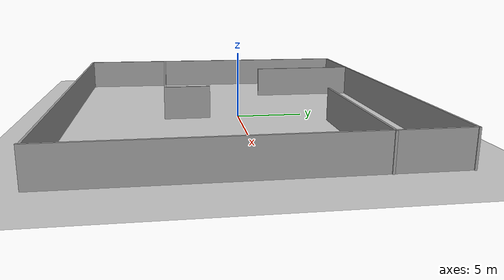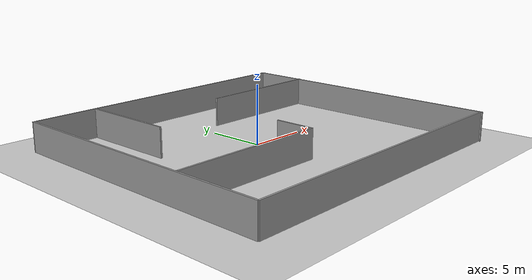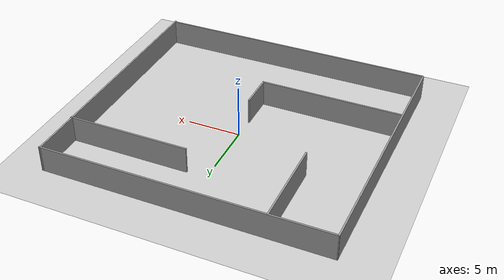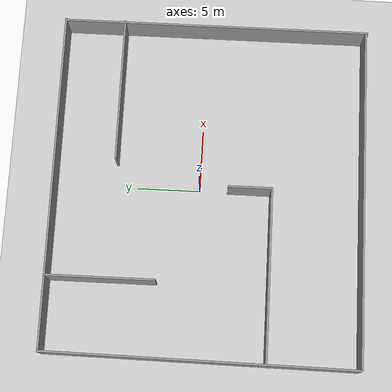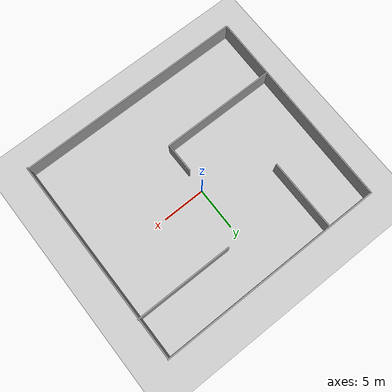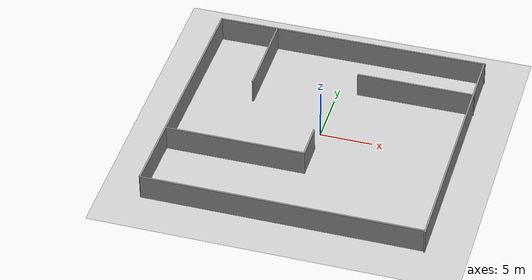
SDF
<sdf version="1.6">
 <world name="default">
  <light name="sun" type="directional">
   <pose>0 0 10 0 -0 0</pose>
   <diffuse>0.8 0.8 0.8 1</diffuse>
   <specular>0.2 0.2 0.2 1</specular>
   <attenuation>
    <range>1000</range>
    <constant>0.9</constant>
    <linear>0.01</linear>
    <quadratic>0.001</quadratic>
   </attenuation>
   <direction>-0.5 0.1 -0.9</direction>
  </light>
  <model name="ground_plane">
   <static>1</static>
   <link name="link">
    <collision name="collision">
     <geometry><plane><normal>0 0 1</normal><size>100 100</size></plane></geometry>
     <surface><friction><ode><mu>100</mu><mu2>50</mu2></ode></friction></surface>
    </collision>
    <visual name="visual">
     <cast_shadows>0</cast_shadows>
     <geometry><plane><normal>0 0 1</normal><size>100 100</size></plane></geometry>
     <material>
      <script><uri>file://media/materials/scripts/gazebo.material</uri><name>Gazebo/Grey</name></script>
     </material>
    </visual>
   </link>
  </model>
  <gravity>0 0 -9.8</gravity>
  <magnetic_field>6e-06 2.3e-05 -4.2e-05</magnetic_field>
  <atmosphere type="adiabatic"/>
  <physics name="default_physics" default="0" type="ode">
   <max_step_size>0.001</max_step_size>
   <real_time_factor>1</real_time_factor>
   <real_time_update_rate>1000</real_time_update_rate>
  </physics>
  <scene><ambient>0.4 0.4 0.4 1</ambient><background>0.7 0.7 0.7 1</background><shadows>1</shadows></scene>
  <spherical_coordinates>
   <surface_model>EARTH_WGS84</surface_model>
   <latitude_deg>0</latitude_deg>
   <longitude_deg>0</longitude_deg>
   <elevation>0</elevation>
   <heading_deg>0</heading_deg>
  </spherical_coordinates>
  <model name="Untitled">
   <pose>-0.169262 -0.681915 0 0 -0 0</pose>
   <link name="Wall_14">
    <collision name="Wall_14_Collision">
     <geometry><box><size>24.2388 0.15 2.5</size></box></geometry>
     <pose>0 0 1.25 0 -0 0</pose>
    </collision>
    <visual name="Wall_14_Visual">
     <pose>0 0 1.25 0 -0 0</pose>
     <geometry><box><size>24.2388 0.15 2.5</size></box></geometry>
     <material>
      <script><uri>file://media/materials/scripts/gazebo.material</uri><name>Gazebo/Grey</name></script>
      <ambient>1 1 1 1</ambient>
     </material>
     <meta><layer>0</layer></meta>
    </visual>
    <pose>-13.2735 0.066862 0 0 0 -1.58347</pose>
   </link>
   <link name="Wall_15">
    <collision name="Wall_15_Collision">
     <geometry><box><size>26.75 0.15 2.5</size></box></geometry>
     <pose>0 0 1.25 0 -0 0</pose>
    </collision>
    <visual name="Wall_15_Visual">
     <pose>0 0 1.25 0 -0 0</pose>
     <geometry><box><size>26.75 0.15 2.5</size></box></geometry>
     <material>
      <script><uri>file://media/materials/scripts/gazebo.material</uri><name>Gazebo/Grey</name></script>
      <ambient>1 1 1 1</ambient>
     </material>
     <meta><layer>0</layer></meta>
    </visual>
    <pose>-0.049806 -12.0529 0 0 -0 0</pose>
   </link>
   <link name="Wall_17">
    <collision name="Wall_17_Collision">
     <geometry><box><size>13.5 0.15 2.5</size></box></geometry>
     <pose>0 0 1.25 0 -0 0</pose>
    </collision>
    <visual name="Wall_17_Visual">
     <pose>0 0 1.25 0 -0 0</pose>
     <geometry><box><size>13.5 0.15 2.5</size></box></geometry>
     <material>
      <script><uri>file://media/materials/scripts/gazebo.material</uri><name>Gazebo/Grey</name></script>
      <ambient>1 1 1 1</ambient>
     </material>
     <meta><layer>0</layer></meta>
    </visual>
    <pose>-6.53273 -4.9242 0 0 -0 0</pose>
   </link>
   <link name="Wall_18">
    <collision name="Wall_18_Collision">
     <geometry><box><size>3.5 0.15 2.5</size></box></geometry>
     <pose>0 0 1.25 0 -0 0</pose>
    </collision>
    <visual name="Wall_18_Visual">
     <pose>0 0 1.25 0 -0 0</pose>
     <geometry><box><size>3.5 0.15 2.5</size></box></geometry>
     <material>
      <script><uri>file://media/materials/scripts/gazebo.material</uri><name>Gazebo/Grey</name></script>
      <ambient>1 1 1 1</ambient>
     </material>
     <meta><layer>0</layer></meta>
    </visual>
    <pose>0.142271 -3.24919 0 0 -0 1.5708</pose>
   </link>
   <link name="Wall_20">
    <collision name="Wall_20_Collision">
     <geometry><box><size>11.5 0.15 2.5</size></box></geometry>
     <pose>0 0 1.25 0 -0 0</pose>
    </collision>
    <visual name="Wall_20_Visual">
     <pose>0 0 1.25 0 -0 0</pose>
     <geometry><box><size>11.5 0.15 2.5</size></box></geometry>
     <material>
      <script><uri>file://media/materials/scripts/gazebo.material</uri><name>Gazebo/Grey</name></script>
      <ambient>1 1 1 1</ambient>
     </material>
     <meta><layer>0</layer></meta>
    </visual>
    <pose>7.75207 7.36292 0 0 -0 3.14159</pose>
   </link>
   <link name="Wall_22">
    <collision name="Wall_22_Collision">
     <geometry><box><size>8.5 0.15 2.5</size></box></geometry>
     <pose>0 0 1.25 0 -0 0</pose>
    </collision>
    <visual name="Wall_22_Visual">
     <pose>0 0 1.25 0 -0 0</pose>
     <geometry><box><size>8.5 0.15 2.5</size></box></geometry>
     <material>
      <script><uri>file://media/materials/scripts/gazebo.material</uri><name>Gazebo/Grey</name></script>
      <ambient>1 1 1 1</ambient>
     </material>
     <meta><layer>0</layer></meta>
    </visual>
    <pose>-7.4076 7.9196 0 0 0 -1.5708</pose>
   </link>
   <link name="Wall_8">
    <collision name="Wall_8_Collision">
     <geometry><box><size>26.6878 0.15 2.5</size></box></geometry>
     <pose>0 0 1.25 0 -0 0</pose>
    </collision>
    <visual name="Wall_8_Visual">
     <pose>0 0 1.25 0 -0 0</pose>
     <geometry><box><size>26.6878 0.15 2.5</size></box></geometry>
     <material>
      <script><uri>file://media/materials/scripts/gazebo.material</uri><name>Gazebo/Grey</name></script>
      <ambient>1 1 1 1</ambient>
     </material>
     <meta><layer>0</layer></meta>
    </visual>
    <pose>0.147998 12.1365 0 0 -0 0.001977</pose>
   </link>
   <link name="Wall_9">
    <collision name="Wall_9_Collision">
     <geometry><box><size>24.4756 0.15 2.5</size></box></geometry>
     <pose>0 0 1.25 0 -0 0</pose>
    </collision>
    <visual name="Wall_9_Visual">
     <pose>0 0 1.25 0 -0 0</pose>
     <geometry><box><size>24.4756 0.15 2.5</size></box></geometry>
     <material>
      <script><uri>file://media/materials/scripts/gazebo.material</uri><name>Gazebo/Grey</name></script>
      <ambient>1 1 1 1</ambient>
     </material>
     <meta><layer>0</layer></meta>
    </visual>
    <pose>13.3529 -3.9e-05 0 0 0 -1.57174</pose>
   </link>
   <static>1</static>
  </model>
  <plugin name="collision_map_creator" filename="libcollision_map_creator.so"/>
 </world>
</sdf>
